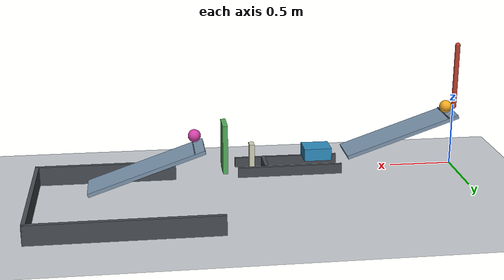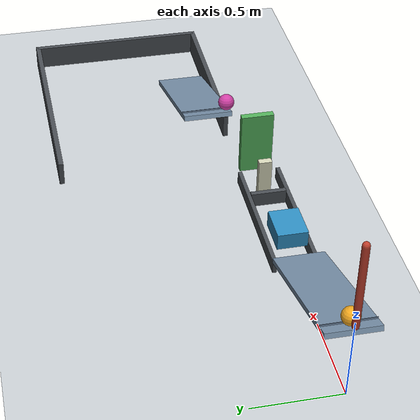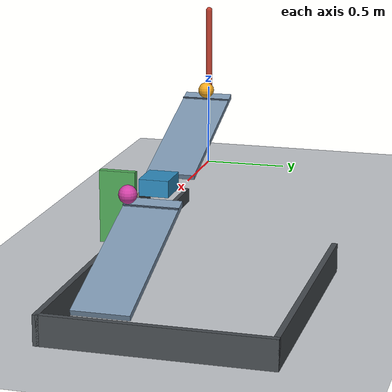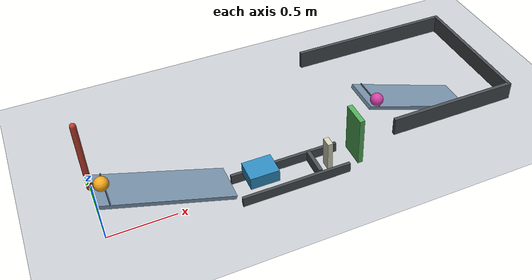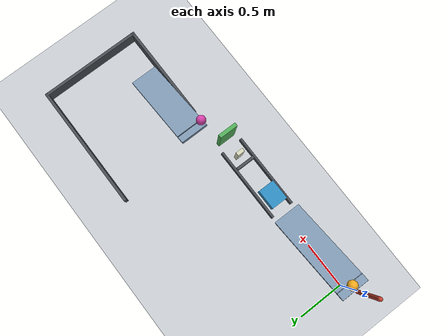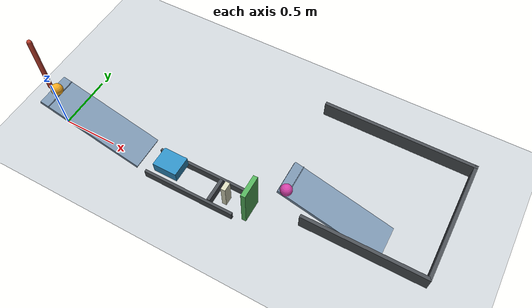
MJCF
<mujoco model="passive_pendulum_ramp_cart_domino_flap">
  <compiler angle="degree" autolimits="true"/>
  <option timestep="0.002" gravity="0 0 -9.81" integrator="implicitfast" cone="elliptic" iterations="100" tolerance="1e-10"/>
  <size njmax="2000" nconmax="300"/>

  <visual>
    <headlight ambient="0.35 0.35 0.35" diffuse="0.7 0.7 0.7" specular="0.15 0.15 0.15"/>
    <map znear="0.01" zfar="30"/>
  </visual>

  <worldbody>
    <light name="scene_light" pos="1 -2 4" dir="0 0 -1"/>
    <camera name="overview" pos="4.2 -5.5 3.0" xyaxes="0.91 0.41 0 -0.16 0.36 0.92"/>

    <!-- Sliding friction is 0.68 throughout. The floor also has rolling resistance to settle spent balls. -->
    <geom name="floor" type="plane" size="6 4 0.1" pos="0 0 0" friction="0.68 0.005 0.005" condim="6" priority="1" solref="0.006 0.690107" solimp="0.99 0.99 0.001" rgba="0.78 0.80 0.82 1"/>

    <!-- Capsule overall length: 0.55 m. Its negative start angle places it left of vertical. -->
    <body name="pendulum1" pos="-0.008921 0 1.021140">
      <joint name="pendulum1_hinge" type="hinge" axis="0 -1 0" damping="0.04" limited="true" range="-60 90"/>
      <geom name="pendulum1_rod" type="capsule" fromto="0 0 -0.02 0 0 -0.53" size="0.02" mass="0.40" friction="0.68 0.005 0.0001" condim="6" solref="0.006 0.690107" solimp="0.99 0.99 0.001" rgba="0.75 0.25 0.18 1"/>
    </body>

    <!-- Ramp coordinates are referenced to the midpoint of its upper surface. -->
    <!-- Upper surface length 0.95 m, width 0.30 m, inclination 19 degrees, low edge z=0.15 m. -->
    <body name="ramp1" pos="0.449121 0 0.304645" quat="0.9862856025 0 0.1650476059 0">
      <geom name="ramp1_surface" type="box" pos="0 0 -0.015" size="0.475 0.15 0.015" density="0" friction="0.68 0.005 0.0001" condim="6" solref="0.006 0.690107" solimp="0.99 0.99 0.001" rgba="0.48 0.58 0.68 1"/>
      <!-- A shallow detent holds ball1 until the pendulum strikes it. -->
      <geom name="ramp1_release_lip" type="box" pos="-0.396 0 0.0045" size="0.003 0.15 0.0045" density="0" friction="0.68 0.005 0.0001" condim="6" solref="0.006 0.690107" solimp="0.99 0.99 0.001" rgba="0.35 0.43 0.52 1"/>
    </body>

    <body name="ball1" pos="0.061079 0 0.491140">
      <freejoint name="ball1_free"/>
      <geom name="ball1_sphere" type="sphere" size="0.05" mass="0.20" friction="0.68 0.005 0.0001" condim="6" solref="0.006 0.690107" solimp="0.99 0.99 0.001" rgba="0.95 0.66 0.12 1"/>
    </body>

    <!-- Ramp1's low edge is x=0.898243. The cart's receiving face is x=1.018243. -->
    <!-- The slide supports the cart without floor-sliding losses. -->
    <body name="cart1" pos="1.128243 0 0.15">
      <joint name="cart1_slide" type="slide" axis="1 0 0" damping="0.20" limited="true" range="0 0.40" solreflimit="0.04 1" solimplimit="0.95 0.95 0.001"/>
      <geom name="cart1_box" type="box" size="0.11 0.09 0.05" mass="0.50" friction="0.68 0.005 0.0001" condim="6" solref="0.006 0.690107" solimp="0.99 0.99 0.001" rgba="0.18 0.55 0.75 1"/>
    </body>

    <body name="cart1_track" pos="0 0 0">
      <geom name="cart1_track_left" type="box" pos="1.36 -0.12 0.04" size="0.42 0.012 0.04" density="0" friction="0.68 0.005 0.0001" condim="6" solref="0.006 0.690107" solimp="0.99 0.99 0.001" rgba="0.28 0.30 0.32 1"/>
      <geom name="cart1_track_right" type="box" pos="1.36 0.12 0.04" size="0.42 0.012 0.04" density="0" friction="0.68 0.005 0.0001" condim="6" solref="0.006 0.690107" solimp="0.99 0.99 0.001" rgba="0.28 0.30 0.32 1"/>
      <!-- Below the cart, this bumper catches ball1 after the transfer. -->
      <geom name="cart1_track_ball_catcher" type="box" pos="1.55 0 0.045" size="0.015 0.108 0.045" density="0" friction="0.68 0.005 0.0001" condim="6" solref="0.006 0.690107" solimp="0.99 0.99 0.001" rgba="0.28 0.30 0.32 1"/>
    </body>

    <!-- The cart reaches the domino after 0.40 m of slide travel. -->
    <body name="domino1" pos="1.658243 0 0.12">
      <freejoint name="domino1_free"/>
      <geom name="domino1_box" type="box" size="0.02 0.04 0.12" mass="0.25" friction="0.68 0.005 0.0001" condim="6" solref="0.006 0.690107" solimp="0.99 0.99 0.001" rgba="0.83 0.83 0.72 1"/>
    </body>

    <!-- Domino downstream face to flap upstream face: 0.18 m. -->
    <!-- Raising the hinge 0.025 m prevents the panel's thickness from penetrating the floor. -->
    <body name="flap1" pos="1.878243 0 0.025">
      <joint name="flap1_hinge" type="hinge" axis="0 1 0" damping="0.04" limited="true" range="0 65" solreflimit="0.004 1" solimplimit="0.99 0.99 0.001"/>
      <geom name="flap1_panel" type="box" pos="0 0 0.20" size="0.02 0.10 0.20" mass="0.30" friction="0.68 0.005 0.0001" condim="6" solref="0.006 0.690107" solimp="0.99 0.99 0.001" rgba="0.32 0.68 0.35 1"/>
    </body>

    <!-- Ramp2 is laterally offset: the flap clips ball2 without striking the fixed ramp. -->
    <!-- Ramp2 has the same 0.95 m length, 0.30 m width and 19-degree inclination. -->
    <body name="ramp2" pos="2.513042 0.262 0.184645" quat="0.9862856025 0 0.1650476059 0">
      <geom name="ramp2_surface" type="box" pos="0 0 -0.015" size="0.475 0.15 0.015" density="0" friction="0.68 0.005 0.0001" condim="6" solref="0.006 0.690107" solimp="0.99 0.99 0.001" rgba="0.48 0.58 0.68 1"/>
      <geom name="ramp2_release_lip" type="box" pos="-0.396 0 0.0045" size="0.003 0.15 0.0045" density="0" friction="0.68 0.005 0.0001" condim="6" solref="0.006 0.690107" solimp="0.99 0.99 0.001" rgba="0.35 0.43 0.52 1"/>
    </body>

    <body name="ball2" pos="2.125 0.135 0.371140">
      <freejoint name="ball2_free"/>
      <geom name="ball2_sphere" type="sphere" size="0.05" mass="0.20" friction="0.68 0.005 0.0001" condim="6" solref="0.006 0.690107" solimp="0.99 0.99 0.001" rgba="0.82 0.25 0.65 1"/>
    </body>

    <body name="ball2_catcher" pos="0 0 0">
      <geom name="ball2_catcher_end" type="box" pos="3.35 0.656 0.075" size="0.015 0.559 0.075" density="0" friction="0.68 0.005 0.0001" condim="6" solref="0.006 0.690107" solimp="0.99 0.99 0.001" rgba="0.28 0.30 0.32 1"/>
      <geom name="ball2_catcher_far_side" type="box" pos="2.67 1.20 0.075" size="0.695 0.015 0.075" density="0" friction="0.68 0.005 0.0001" condim="6" solref="0.006 0.690107" solimp="0.99 0.99 0.001" rgba="0.28 0.30 0.32 1"/>
      <geom name="ball2_catcher_near_side" type="box" pos="2.82 0.097 0.075" size="0.545 0.015 0.075" density="0" friction="0.68 0.005 0.0001" condim="6" solref="0.006 0.690107" solimp="0.99 0.99 0.001" rgba="0.28 0.30 0.32 1"/>
    </body>
  </worldbody>

  <keyframe>
    <key name="start" time="0" qpos="-0.9599310886 0.061079 0 0.491140 1 0 0 0 0 1.658243 0 0.12 1 0 0 0 0 2.125 0.135 0.371140 1 0 0 0" qvel="0 0 0 0 0 0 0 0 0 0 0 0 0 0 0 0 0 0 0 0 0"/>
  </keyframe>
</mujoco>
